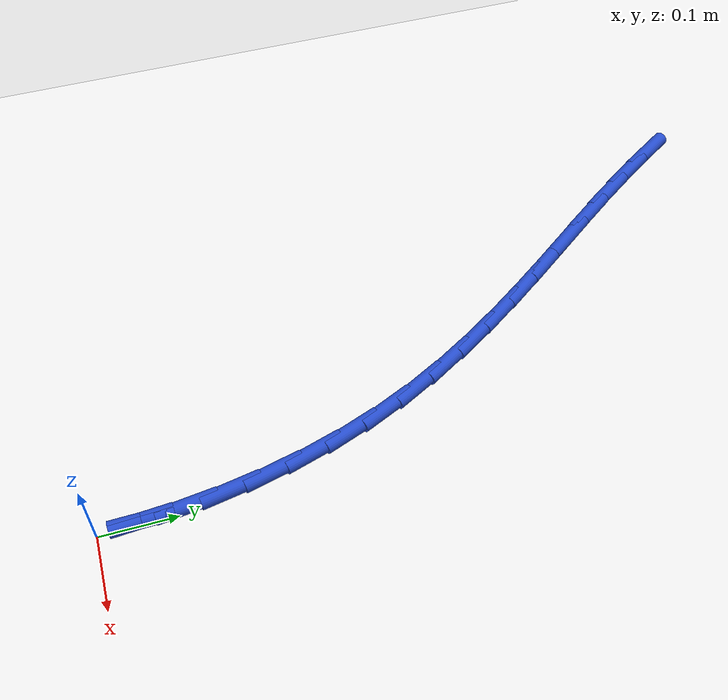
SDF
<sdf version="1.6">
 <world name="default">
  <model name="ground_plane">
   <static>1</static>
   <link name="link">
    <collision name="collision">
     <geometry><plane><normal>0 0 1</normal><size>100 100</size></plane></geometry>
     <surface><friction><ode><mu>100</mu><mu2>50</mu2></ode></friction></surface>
    </collision>
    <visual name="visual">
     <cast_shadows>0</cast_shadows>
     <geometry><plane><normal>0 0 1</normal><size>100 100</size></plane></geometry>
     <material>
      <script><uri>file://media/materials/scripts/gazebo.material</uri><name>Gazebo/WhiteGlow</name></script>
     </material>
    </visual>
   </link>
  </model>
  <model name="line">
   <link name="link_1">
    <pose>-0.001116520090543789 0.05552880888172366 0.01 0 1.57 -1.495366794349657</pose>
    <collision name="collision">
     <geometry><cylinder><radius>0.01</radius><length>0.08</length></cylinder></geometry>
    </collision>
    <visual name="visual">
     <material>
      <script><name>Gazebo/Blue</name><uri>file://media/materials/scripts/gazebo.material</uri></script>
     </material>
     <geometry><cylinder><radius>0.01</radius><length>0.08</length></cylinder></geometry>
    </visual>
   </link>
   <link name="link_2">
    <pose>-0.005309508748595053 0.11101150036339982 0.01 0 1.57 -1.4390167244081917</pose>
    <collision name="collision">
     <geometry><cylinder><radius>0.01</radius><length>0.08</length></cylinder></geometry>
    </collision>
    <visual name="visual">
     <material>
      <script><name>Gazebo/Blue</name><uri>file://media/materials/scripts/gazebo.material</uri></script>
     </material>
     <geometry><cylinder><radius>0.01</radius><length>0.08</length></cylinder></geometry>
    </visual>
   </link>
   <link name="link_3">
    <pose>-0.012625676608028148 0.16620796546003416 0.01 0 1.57 -1.3812919054459138</pose>
    <collision name="collision">
     <geometry><cylinder><radius>0.01</radius><length>0.08</length></cylinder></geometry>
    </collision>
    <visual name="visual">
     <material>
      <script><name>Gazebo/Blue</name><uri>file://media/materials/scripts/gazebo.material</uri></script>
     </material>
     <geometry><cylinder><radius>0.01</radius><length>0.08</length></cylinder></geometry>
    </visual>
   </link>
   <link name="link_4">
    <pose>-0.023111734302717485 0.22087809518663248 0.01 0 1.57 -1.3218626975104655</pose>
    <collision name="collision">
     <geometry><cylinder><radius>0.01</radius><length>0.08</length></cylinder></geometry>
    </collision>
    <visual name="visual">
     <material>
      <script><name>Gazebo/Blue</name><uri>file://media/materials/scripts/gazebo.material</uri></script>
     </material>
     <geometry><cylinder><radius>0.01</radius><length>0.08</length></cylinder></geometry>
    </visual>
   </link>
   <link name="link_5">
    <pose>-0.03681439246653747 0.27478178055820035 0.01 0 1.57 -1.2604266667311834</pose>
    <collision name="collision">
     <geometry><cylinder><radius>0.01</radius><length>0.08</length></cylinder></geometry>
    </collision>
    <visual name="visual">
     <material>
      <script><name>Gazebo/Blue</name><uri>file://media/materials/scripts/gazebo.material</uri></script>
     </material>
     <geometry><cylinder><radius>0.01</radius><length>0.08</length></cylinder></geometry>
    </visual>
   </link>
   <link name="link_6">
    <pose>-0.05378036173336253 0.32767891258974374 0.01 0 1.57 -1.1967187652436428</pose>
    <collision name="collision">
     <geometry><cylinder><radius>0.01</radius><length>0.08</length></cylinder></geometry>
    </collision>
    <visual name="visual">
     <material>
      <script><name>Gazebo/Blue</name><uri>file://media/materials/scripts/gazebo.material</uri></script>
     </material>
     <geometry><cylinder><radius>0.01</radius><length>0.08</length></cylinder></geometry>
    </visual>
   </link>
   <link name="link_7">
    <pose>-0.0740563527370671 0.3793293822962682 0.01 0 1.57 -1.130738590442869</pose>
    <collision name="collision">
     <geometry><cylinder><radius>0.01</radius><length>0.08</length></cylinder></geometry>
    </collision>
    <visual name="visual">
     <material>
      <script><name>Gazebo/Blue</name><uri>file://media/materials/scripts/gazebo.material</uri></script>
     </material>
     <geometry><cylinder><radius>0.01</radius><length>0.08</length></cylinder></geometry>
    </visual>
   </link>
   <link name="link_8">
    <pose>-0.0976792400495211 0.42949999721846877 0.01 0 1.57 -1.068445978851124</pose>
    <collision name="collision">
     <geometry><cylinder><radius>0.01</radius><length>0.08</length></cylinder></geometry>
    </collision>
    <visual name="visual">
     <material>
      <script><name>Gazebo/Blue</name><uri>file://media/materials/scripts/gazebo.material</uri></script>
     </material>
     <geometry><cylinder><radius>0.01</radius><length>0.08</length></cylinder></geometry>
    </visual>
   </link>
   <link name="link_9">
    <pose>-0.12440739023265601 0.47815340626165503 0.01 0 1.57 -1.0166590960415076</pose>
    <collision name="collision">
     <geometry><cylinder><radius>0.01</radius><length>0.08</length></cylinder></geometry>
    </collision>
    <visual name="visual">
     <material>
      <script><name>Gazebo/Blue</name><uri>file://media/materials/scripts/gazebo.material</uri></script>
     </material>
     <geometry><cylinder><radius>0.01</radius><length>0.08</length></cylinder></geometry>
    </visual>
   </link>
   <link name="link_10">
    <pose>-0.1536880923540233 0.5254710019177713 0.01 0 1.57 -0.9756159868433226</pose>
    <collision name="collision">
     <geometry><cylinder><radius>0.01</radius><length>0.08</length></cylinder></geometry>
    </collision>
    <visual name="visual">
     <material>
      <script><name>Gazebo/Blue</name><uri>file://media/materials/scripts/gazebo.material</uri></script>
     </material>
     <geometry><cylinder><radius>0.01</radius><length>0.08</length></cylinder></geometry>
    </visual>
   </link>
   <link name="link_11">
    <pose>-0.18495226053611355 0.5716456912186374 0.01 0 1.57 -0.9450748598798837</pose>
    <collision name="collision">
     <geometry><cylinder><radius>0.01</radius><length>0.08</length></cylinder></geometry>
    </collision>
    <visual name="visual">
     <material>
      <script><name>Gazebo/Blue</name><uri>file://media/materials/scripts/gazebo.material</uri></script>
     </material>
     <geometry><cylinder><radius>0.01</radius><length>0.08</length></cylinder></geometry>
    </visual>
   </link>
   <link name="link_12">
    <pose>-0.2176308089014174 0.6168703811960738 0.01 0 1.57 -0.9248078906574905</pose>
    <collision name="collision">
     <geometry><cylinder><radius>0.01</radius><length>0.08</length></cylinder></geometry>
    </collision>
    <visual name="visual">
     <material>
      <script><name>Gazebo/Blue</name><uri>file://media/materials/scripts/gazebo.material</uri></script>
     </material>
     <geometry><cylinder><radius>0.01</radius><length>0.08</length></cylinder></geometry>
    </visual>
   </link>
   <link name="link_13">
    <pose>-0.2511546515724252 0.6613379788819003 0.01 0 1.57 -0.9146973530127385</pose>
    <collision name="collision">
     <geometry><cylinder><radius>0.01</radius><length>0.08</length></cylinder></geometry>
    </collision>
    <visual name="visual">
     <material>
      <script><name>Gazebo/Blue</name><uri>file://media/materials/scripts/gazebo.material</uri></script>
     </material>
     <geometry><cylinder><radius>0.01</radius><length>0.08</length></cylinder></geometry>
    </visual>
   </link>
   <link name="link_14">
    <pose>-0.2849547026716277 0.705241391307937 0.01 0 1.57 -0.9147989040670265</pose>
    <collision name="collision">
     <geometry><cylinder><radius>0.01</radius><length>0.08</length></cylinder></geometry>
    </collision>
    <visual name="visual">
     <material>
      <script><name>Gazebo/Blue</name><uri>file://media/materials/scripts/gazebo.material</uri></script>
     </material>
     <geometry><cylinder><radius>0.01</radius><length>0.08</length></cylinder></geometry>
    </visual>
   </link>
   <link name="link_15">
    <pose>-0.31846187632151546 0.7487735255060043 0.01 0 1.57 -0.9253805309040767</pose>
    <collision name="collision">
     <geometry><cylinder><radius>0.01</radius><length>0.08</length></cylinder></geometry>
    </collision>
    <visual name="visual">
     <material>
      <script><name>Gazebo/Blue</name><uri>file://media/materials/scripts/gazebo.material</uri></script>
     </material>
     <geometry><cylinder><radius>0.01</radius><length>0.08</length></cylinder></geometry>
    </visual>
   </link>
   <link name="link_16">
    <pose>-0.3511070866445789 0.7921272885079219 0.01 0 1.57 -0.9468921747444471</pose>
    <collision name="collision">
     <geometry><cylinder><radius>0.01</radius><length>0.08</length></cylinder></geometry>
    </collision>
    <visual name="visual">
     <material>
      <script><name>Gazebo/Blue</name><uri>file://media/materials/scripts/gazebo.material</uri></script>
     </material>
     <geometry><cylinder><radius>0.01</radius><length>0.08</length></cylinder></geometry>
    </visual>
   </link>
   <link name="link_17">
    <pose>-0.3823240401182465 0.8354950418155851 0.01 0 1.57 -0.9729804366898012</pose>
    <collision name="collision">
     <geometry><cylinder><radius>0.01</radius><length>0.08</length></cylinder></geometry>
    </collision>
    <visual name="visual">
     <material>
      <script><name>Gazebo/Blue</name><uri>file://media/materials/scripts/gazebo.material</uri></script>
     </material>
     <geometry><cylinder><radius>0.01</radius><length>0.08</length></cylinder></geometry>
    </visual>
   </link>
   <link name="link_18">
    <pose>-0.41194249559819796 0.8789917719449142 0.01 0 1.57 -0.9892312899376181</pose>
    <collision name="collision">
     <geometry><cylinder><radius>0.01</radius><length>0.08</length></cylinder></geometry>
    </collision>
    <visual name="visual">
     <material>
      <script><name>Gazebo/Blue</name><uri>file://media/materials/scripts/gazebo.material</uri></script>
     </material>
     <geometry><cylinder><radius>0.01</radius><length>0.08</length></cylinder></geometry>
    </visual>
   </link>
   <link name="link_151">
    <pose>-0.0011152287551976937 0.05555452911436752 0.01 0 1.57 -1.5507245342276157</pose>
    <collision name="collision">
     <geometry><cylinder><radius>0.01</radius><length>0.08</length></cylinder></geometry>
    </collision>
    <visual name="visual">
     <material>
      <script><name>Gazebo/Blue</name><uri>file://media/materials/scripts/gazebo.material</uri></script>
     </material>
     <geometry><cylinder><radius>0.01</radius><length>0.08</length></cylinder></geometry>
    </visual>
   </link>
  </model>
 </world>
</sdf>
